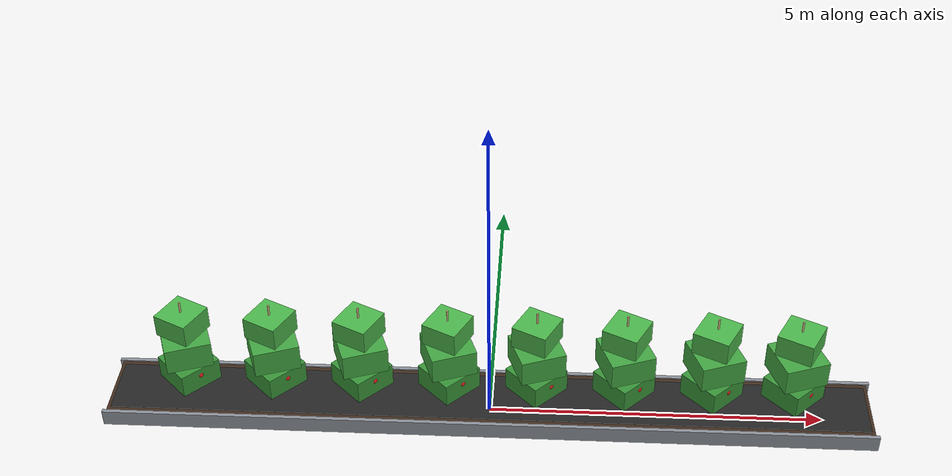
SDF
<?xml version="1.0" ?>
<sdf version="1.9">
  <model name="tomato_bed">
    <static>true</static>
    <link name="bed_link">
      <pose>0 0 0 0 0 0</pose>
      <!-- Raised Bed Soil & Structure -->
      <visual name="soil_surface">
        <pose>0 0 0.12 0 0 0</pose>
        <geometry><box><size>11.4 1.1 0.22</size></box></geometry>
        <material><ambient>0.2 0.14 0.09 1</ambient><diffuse>0.26 0.18 0.12 1</diffuse></material>
      </visual>
      <visual name="mulch_strip">
        <pose>0 0 0.235 0 0 0</pose>
        <geometry><box><size>11.3 0.95 0.01</size></box></geometry>
        <material><ambient>0.1 0.1 0.1 1</ambient><diffuse>0.15 0.15 0.15 1</diffuse></material>
      </visual>
      <visual name="border_left">
        <pose>0 -0.58 0.125 0 0 0</pose>
        <geometry><box><size>11.5 0.06 0.25</size></box></geometry>
        <material><ambient>0.45 0.47 0.5 1</ambient><diffuse>0.55 0.57 0.6 1</diffuse></material>
      </visual>
      <visual name="border_right">
        <pose>0 0.58 0.125 0 0 0</pose>
        <geometry><box><size>11.5 0.06 0.25</size></box></geometry>
        <material><ambient>0.45 0.47 0.5 1</ambient><diffuse>0.55 0.57 0.6 1</diffuse></material>
      </visual>
      <visual name="stake_1"><pose>-4.5 0 1.05 0 0 0</pose><geometry><cylinder><radius>0.015</radius><length>1.7</length></cylinder></geometry><material><ambient>0.7 0.6 0.45 1</ambient><diffuse>0.8 0.68 0.5 1</diffuse></material></visual>
      <visual name="canopy_low_1"><pose>-4.5 0 0.65 0 0 0.78</pose><geometry><box><size>0.65 0.65 0.35</size></box></geometry><material><ambient>0.15 0.48 0.15 1</ambient><diffuse>0.22 0.58 0.22 1</diffuse></material></visual>
      <visual name="canopy_mid_1"><pose>-4.5 0 1.1 0 0 0.35</pose><geometry><box><size>0.68 0.68 0.4</size></box></geometry><material><ambient>0.18 0.52 0.18 1</ambient><diffuse>0.26 0.65 0.26 1</diffuse></material></visual>
      <visual name="canopy_top_1"><pose>-4.5 0 1.55 0 0 1.1</pose><geometry><box><size>0.55 0.55 0.35</size></box></geometry><material><ambient>0.2 0.58 0.2 1</ambient><diffuse>0.3 0.72 0.3 1</diffuse></material></visual>
      <visual name="fruit_top_1"><pose>-4.34 0.15 1.5 0 0 0</pose><geometry><sphere><radius>0.08</radius></sphere></geometry><material><ambient>0.9 0.06 0.06 1</ambient><diffuse>0.98 0.1 0.1 1</diffuse></material></visual>
      <visual name="fruit_mid_1"><pose>-4.68 -0.15 1.1 0 0 0</pose><geometry><sphere><radius>0.085</radius></sphere></geometry><material><ambient>0.9 0.06 0.06 1</ambient><diffuse>0.98 0.1 0.1 1</diffuse></material></visual>
      <visual name="fruit_low_1"><pose>-4.32 -0.18 0.7 0 0 0</pose><geometry><sphere><radius>0.08</radius></sphere></geometry><material><ambient>0.88 0.08 0.08 1</ambient><diffuse>0.95 0.12 0.12 1</diffuse></material></visual>
      <visual name="blossom_1"><pose>-4.62 0.2 1.6 0 0 0</pose><geometry><sphere><radius>0.04</radius></sphere></geometry><material><ambient>0.98 0.9 0.1 1</ambient><diffuse>1.0 0.95 0.15 1</diffuse></material></visual>
      <visual name="stake_2"><pose>-3.2 0 1.05 0 0 0</pose><geometry><cylinder><radius>0.015</radius><length>1.7</length></cylinder></geometry><material><ambient>0.7 0.6 0.45 1</ambient><diffuse>0.8 0.68 0.5 1</diffuse></material></visual>
      <visual name="canopy_low_2"><pose>-3.2 0 0.65 0 0 0.78</pose><geometry><box><size>0.65 0.65 0.35</size></box></geometry><material><ambient>0.15 0.48 0.15 1</ambient><diffuse>0.22 0.58 0.22 1</diffuse></material></visual>
      <visual name="canopy_mid_2"><pose>-3.2 0 1.1 0 0 0.35</pose><geometry><box><size>0.68 0.68 0.4</size></box></geometry><material><ambient>0.18 0.52 0.18 1</ambient><diffuse>0.26 0.65 0.26 1</diffuse></material></visual>
      <visual name="canopy_top_2"><pose>-3.2 0 1.55 0 0 1.1</pose><geometry><box><size>0.55 0.55 0.35</size></box></geometry><material><ambient>0.2 0.58 0.2 1</ambient><diffuse>0.3 0.72 0.3 1</diffuse></material></visual>
      <visual name="fruit_top_2"><pose>-3.04 0.15 1.5 0 0 0</pose><geometry><sphere><radius>0.08</radius></sphere></geometry><material><ambient>0.9 0.06 0.06 1</ambient><diffuse>0.98 0.1 0.1 1</diffuse></material></visual>
      <visual name="fruit_mid_2"><pose>-3.3800000000000003 -0.15 1.1 0 0 0</pose><geometry><sphere><radius>0.085</radius></sphere></geometry><material><ambient>0.9 0.06 0.06 1</ambient><diffuse>0.98 0.1 0.1 1</diffuse></material></visual>
      <visual name="fruit_low_2"><pose>-3.02 -0.18 0.7 0 0 0</pose><geometry><sphere><radius>0.08</radius></sphere></geometry><material><ambient>0.88 0.08 0.08 1</ambient><diffuse>0.95 0.12 0.12 1</diffuse></material></visual>
      <visual name="blossom_2"><pose>-3.3200000000000003 0.2 1.6 0 0 0</pose><geometry><sphere><radius>0.04</radius></sphere></geometry><material><ambient>0.98 0.9 0.1 1</ambient><diffuse>1.0 0.95 0.15 1</diffuse></material></visual>
      <visual name="stake_3"><pose>-1.9 0 1.05 0 0 0</pose><geometry><cylinder><radius>0.015</radius><length>1.7</length></cylinder></geometry><material><ambient>0.7 0.6 0.45 1</ambient><diffuse>0.8 0.68 0.5 1</diffuse></material></visual>
      <visual name="canopy_low_3"><pose>-1.9 0 0.65 0 0 0.78</pose><geometry><box><size>0.65 0.65 0.35</size></box></geometry><material><ambient>0.15 0.48 0.15 1</ambient><diffuse>0.22 0.58 0.22 1</diffuse></material></visual>
      <visual name="canopy_mid_3"><pose>-1.9 0 1.1 0 0 0.35</pose><geometry><box><size>0.68 0.68 0.4</size></box></geometry><material><ambient>0.18 0.52 0.18 1</ambient><diffuse>0.26 0.65 0.26 1</diffuse></material></visual>
      <visual name="canopy_top_3"><pose>-1.9 0 1.55 0 0 1.1</pose><geometry><box><size>0.55 0.55 0.35</size></box></geometry><material><ambient>0.2 0.58 0.2 1</ambient><diffuse>0.3 0.72 0.3 1</diffuse></material></visual>
      <visual name="fruit_top_3"><pose>-1.74 0.15 1.5 0 0 0</pose><geometry><sphere><radius>0.08</radius></sphere></geometry><material><ambient>0.9 0.06 0.06 1</ambient><diffuse>0.98 0.1 0.1 1</diffuse></material></visual>
      <visual name="fruit_mid_3"><pose>-2.08 -0.15 1.1 0 0 0</pose><geometry><sphere><radius>0.085</radius></sphere></geometry><material><ambient>0.9 0.06 0.06 1</ambient><diffuse>0.98 0.1 0.1 1</diffuse></material></visual>
      <visual name="fruit_low_3"><pose>-1.72 -0.18 0.7 0 0 0</pose><geometry><sphere><radius>0.08</radius></sphere></geometry><material><ambient>0.88 0.08 0.08 1</ambient><diffuse>0.95 0.12 0.12 1</diffuse></material></visual>
      <visual name="blossom_3"><pose>-2.02 0.2 1.6 0 0 0</pose><geometry><sphere><radius>0.04</radius></sphere></geometry><material><ambient>0.98 0.9 0.1 1</ambient><diffuse>1.0 0.95 0.15 1</diffuse></material></visual>
      <visual name="stake_4"><pose>-0.6 0 1.05 0 0 0</pose><geometry><cylinder><radius>0.015</radius><length>1.7</length></cylinder></geometry><material><ambient>0.7 0.6 0.45 1</ambient><diffuse>0.8 0.68 0.5 1</diffuse></material></visual>
      <visual name="canopy_low_4"><pose>-0.6 0 0.65 0 0 0.78</pose><geometry><box><size>0.65 0.65 0.35</size></box></geometry><material><ambient>0.15 0.48 0.15 1</ambient><diffuse>0.22 0.58 0.22 1</diffuse></material></visual>
      <visual name="canopy_mid_4"><pose>-0.6 0 1.1 0 0 0.35</pose><geometry><box><size>0.68 0.68 0.4</size></box></geometry><material><ambient>0.18 0.52 0.18 1</ambient><diffuse>0.26 0.65 0.26 1</diffuse></material></visual>
      <visual name="canopy_top_4"><pose>-0.6 0 1.55 0 0 1.1</pose><geometry><box><size>0.55 0.55 0.35</size></box></geometry><material><ambient>0.2 0.58 0.2 1</ambient><diffuse>0.3 0.72 0.3 1</diffuse></material></visual>
      <visual name="fruit_top_4"><pose>-0.43999999999999995 0.15 1.5 0 0 0</pose><geometry><sphere><radius>0.08</radius></sphere></geometry><material><ambient>0.9 0.06 0.06 1</ambient><diffuse>0.98 0.1 0.1 1</diffuse></material></visual>
      <visual name="fruit_mid_4"><pose>-0.78 -0.15 1.1 0 0 0</pose><geometry><sphere><radius>0.085</radius></sphere></geometry><material><ambient>0.9 0.06 0.06 1</ambient><diffuse>0.98 0.1 0.1 1</diffuse></material></visual>
      <visual name="fruit_low_4"><pose>-0.42 -0.18 0.7 0 0 0</pose><geometry><sphere><radius>0.08</radius></sphere></geometry><material><ambient>0.88 0.08 0.08 1</ambient><diffuse>0.95 0.12 0.12 1</diffuse></material></visual>
      <visual name="blossom_4"><pose>-0.72 0.2 1.6 0 0 0</pose><geometry><sphere><radius>0.04</radius></sphere></geometry><material><ambient>0.98 0.9 0.1 1</ambient><diffuse>1.0 0.95 0.15 1</diffuse></material></visual>
      <visual name="stake_5"><pose>0.7 0 1.05 0 0 0</pose><geometry><cylinder><radius>0.015</radius><length>1.7</length></cylinder></geometry><material><ambient>0.7 0.6 0.45 1</ambient><diffuse>0.8 0.68 0.5 1</diffuse></material></visual>
      <visual name="canopy_low_5"><pose>0.7 0 0.65 0 0 0.78</pose><geometry><box><size>0.65 0.65 0.35</size></box></geometry><material><ambient>0.15 0.48 0.15 1</ambient><diffuse>0.22 0.58 0.22 1</diffuse></material></visual>
      <visual name="canopy_mid_5"><pose>0.7 0 1.1 0 0 0.35</pose><geometry><box><size>0.68 0.68 0.4</size></box></geometry><material><ambient>0.18 0.52 0.18 1</ambient><diffuse>0.26 0.65 0.26 1</diffuse></material></visual>
      <visual name="canopy_top_5"><pose>0.7 0 1.55 0 0 1.1</pose><geometry><box><size>0.55 0.55 0.35</size></box></geometry><material><ambient>0.2 0.58 0.2 1</ambient><diffuse>0.3 0.72 0.3 1</diffuse></material></visual>
      <visual name="fruit_top_5"><pose>0.86 0.15 1.5 0 0 0</pose><geometry><sphere><radius>0.08</radius></sphere></geometry><material><ambient>0.9 0.06 0.06 1</ambient><diffuse>0.98 0.1 0.1 1</diffuse></material></visual>
      <visual name="fruit_mid_5"><pose>0.52 -0.15 1.1 0 0 0</pose><geometry><sphere><radius>0.085</radius></sphere></geometry><material><ambient>0.9 0.06 0.06 1</ambient><diffuse>0.98 0.1 0.1 1</diffuse></material></visual>
      <visual name="fruit_low_5"><pose>0.8799999999999999 -0.18 0.7 0 0 0</pose><geometry><sphere><radius>0.08</radius></sphere></geometry><material><ambient>0.88 0.08 0.08 1</ambient><diffuse>0.95 0.12 0.12 1</diffuse></material></visual>
      <visual name="blossom_5"><pose>0.58 0.2 1.6 0 0 0</pose><geometry><sphere><radius>0.04</radius></sphere></geometry><material><ambient>0.98 0.9 0.1 1</ambient><diffuse>1.0 0.95 0.15 1</diffuse></material></visual>
      <visual name="stake_6"><pose>2.0 0 1.05 0 0 0</pose><geometry><cylinder><radius>0.015</radius><length>1.7</length></cylinder></geometry><material><ambient>0.7 0.6 0.45 1</ambient><diffuse>0.8 0.68 0.5 1</diffuse></material></visual>
      <visual name="canopy_low_6"><pose>2.0 0 0.65 0 0 0.78</pose><geometry><box><size>0.65 0.65 0.35</size></box></geometry><material><ambient>0.15 0.48 0.15 1</ambient><diffuse>0.22 0.58 0.22 1</diffuse></material></visual>
      <visual name="canopy_mid_6"><pose>2.0 0 1.1 0 0 0.35</pose><geometry><box><size>0.68 0.68 0.4</size></box></geometry><material><ambient>0.18 0.52 0.18 1</ambient><diffuse>0.26 0.65 0.26 1</diffuse></material></visual>
      <visual name="canopy_top_6"><pose>2.0 0 1.55 0 0 1.1</pose><geometry><box><size>0.55 0.55 0.35</size></box></geometry><material><ambient>0.2 0.58 0.2 1</ambient><diffuse>0.3 0.72 0.3 1</diffuse></material></visual>
      <visual name="fruit_top_6"><pose>2.16 0.15 1.5 0 0 0</pose><geometry><sphere><radius>0.08</radius></sphere></geometry><material><ambient>0.9 0.06 0.06 1</ambient><diffuse>0.98 0.1 0.1 1</diffuse></material></visual>
      <visual name="fruit_mid_6"><pose>1.82 -0.15 1.1 0 0 0</pose><geometry><sphere><radius>0.085</radius></sphere></geometry><material><ambient>0.9 0.06 0.06 1</ambient><diffuse>0.98 0.1 0.1 1</diffuse></material></visual>
      <visual name="fruit_low_6"><pose>2.18 -0.18 0.7 0 0 0</pose><geometry><sphere><radius>0.08</radius></sphere></geometry><material><ambient>0.88 0.08 0.08 1</ambient><diffuse>0.95 0.12 0.12 1</diffuse></material></visual>
      <visual name="blossom_6"><pose>1.88 0.2 1.6 0 0 0</pose><geometry><sphere><radius>0.04</radius></sphere></geometry><material><ambient>0.98 0.9 0.1 1</ambient><diffuse>1.0 0.95 0.15 1</diffuse></material></visual>
      <visual name="stake_7"><pose>3.3 0 1.05 0 0 0</pose><geometry><cylinder><radius>0.015</radius><length>1.7</length></cylinder></geometry><material><ambient>0.7 0.6 0.45 1</ambient><diffuse>0.8 0.68 0.5 1</diffuse></material></visual>
      <visual name="canopy_low_7"><pose>3.3 0 0.65 0 0 0.78</pose><geometry><box><size>0.65 0.65 0.35</size></box></geometry><material><ambient>0.15 0.48 0.15 1</ambient><diffuse>0.22 0.58 0.22 1</diffuse></material></visual>
      <visual name="canopy_mid_7"><pose>3.3 0 1.1 0 0 0.35</pose><geometry><box><size>0.68 0.68 0.4</size></box></geometry><material><ambient>0.18 0.52 0.18 1</ambient><diffuse>0.26 0.65 0.26 1</diffuse></material></visual>
      <visual name="canopy_top_7"><pose>3.3 0 1.55 0 0 1.1</pose><geometry><box><size>0.55 0.55 0.35</size></box></geometry><material><ambient>0.2 0.58 0.2 1</ambient><diffuse>0.3 0.72 0.3 1</diffuse></material></visual>
      <visual name="fruit_top_7"><pose>3.46 0.15 1.5 0 0 0</pose><geometry><sphere><radius>0.08</radius></sphere></geometry><material><ambient>0.9 0.06 0.06 1</ambient><diffuse>0.98 0.1 0.1 1</diffuse></material></visual>
      <visual name="fruit_mid_7"><pose>3.1199999999999997 -0.15 1.1 0 0 0</pose><geometry><sphere><radius>0.085</radius></sphere></geometry><material><ambient>0.9 0.06 0.06 1</ambient><diffuse>0.98 0.1 0.1 1</diffuse></material></visual>
      <visual name="fruit_low_7"><pose>3.48 -0.18 0.7 0 0 0</pose><geometry><sphere><radius>0.08</radius></sphere></geometry><material><ambient>0.88 0.08 0.08 1</ambient><diffuse>0.95 0.12 0.12 1</diffuse></material></visual>
      <visual name="blossom_7"><pose>3.1799999999999997 0.2 1.6 0 0 0</pose><geometry><sphere><radius>0.04</radius></sphere></geometry><material><ambient>0.98 0.9 0.1 1</ambient><diffuse>1.0 0.95 0.15 1</diffuse></material></visual>
      <visual name="stake_8"><pose>4.5 0 1.05 0 0 0</pose><geometry><cylinder><radius>0.015</radius><length>1.7</length></cylinder></geometry><material><ambient>0.7 0.6 0.45 1</ambient><diffuse>0.8 0.68 0.5 1</diffuse></material></visual>
      <visual name="canopy_low_8"><pose>4.5 0 0.65 0 0 0.78</pose><geometry><box><size>0.65 0.65 0.35</size></box></geometry><material><ambient>0.15 0.48 0.15 1</ambient><diffuse>0.22 0.58 0.22 1</diffuse></material></visual>
      <visual name="canopy_mid_8"><pose>4.5 0 1.1 0 0 0.35</pose><geometry><box><size>0.68 0.68 0.4</size></box></geometry><material><ambient>0.18 0.52 0.18 1</ambient><diffuse>0.26 0.65 0.26 1</diffuse></material></visual>
      <visual name="canopy_top_8"><pose>4.5 0 1.55 0 0 1.1</pose><geometry><box><size>0.55 0.55 0.35</size></box></geometry><material><ambient>0.2 0.58 0.2 1</ambient><diffuse>0.3 0.72 0.3 1</diffuse></material></visual>
      <visual name="fruit_top_8"><pose>4.66 0.15 1.5 0 0 0</pose><geometry><sphere><radius>0.08</radius></sphere></geometry><material><ambient>0.9 0.06 0.06 1</ambient><diffuse>0.98 0.1 0.1 1</diffuse></material></visual>
      <visual name="fruit_mid_8"><pose>4.32 -0.15 1.1 0 0 0</pose><geometry><sphere><radius>0.085</radius></sphere></geometry><material><ambient>0.9 0.06 0.06 1</ambient><diffuse>0.98 0.1 0.1 1</diffuse></material></visual>
      <visual name="fruit_low_8"><pose>4.68 -0.18 0.7 0 0 0</pose><geometry><sphere><radius>0.08</radius></sphere></geometry><material><ambient>0.88 0.08 0.08 1</ambient><diffuse>0.95 0.12 0.12 1</diffuse></material></visual>
      <visual name="blossom_8"><pose>4.38 0.2 1.6 0 0 0</pose><geometry><sphere><radius>0.04</radius></sphere></geometry><material><ambient>0.98 0.9 0.1 1</ambient><diffuse>1.0 0.95 0.15 1</diffuse></material></visual>
      <!-- Single Bed Physics Collision -->
      <collision name="bed_col">
        <pose>0 0 0.5 0 0 0</pose>
        <geometry><box><size>11.5 1.2 1.0</size></box></geometry>
      </collision>
    </link>
  </model>
</sdf>
